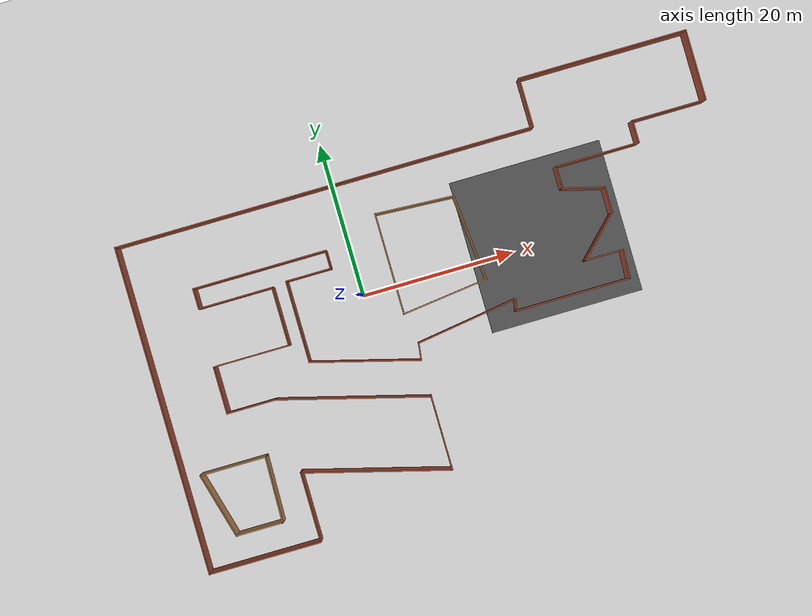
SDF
<sdf version="1.7">
 <world name="default">
  <light name="sun" type="directional">
   <pose>0 0 10 0 -0 0</pose>
   <diffuse>0.8 0.8 0.8 1</diffuse>
   <specular>0.2 0.2 0.2 1</specular>
   <attenuation>
    <range>1000</range>
    <constant>0.9</constant>
    <linear>0.01</linear>
    <quadratic>0.001</quadratic>
   </attenuation>
   <direction>-0.5 0.1 -0.9</direction>
   <spot><inner_angle>0</inner_angle><outer_angle>0</outer_angle><falloff>0</falloff></spot>
  </light>
  <model name="ground_plane">
   <static>1</static>
   <link name="link">
    <collision name="collision">
     <geometry><plane><normal>0 0 1</normal><size>100 100</size></plane></geometry>
     <surface><friction><ode><mu>100</mu><mu2>50</mu2></ode></friction></surface>
    </collision>
    <visual name="visual">
     <cast_shadows>0</cast_shadows>
     <geometry><plane><normal>0 0 1</normal><size>100 100</size></plane></geometry>
     <material>
      <script><uri>file://media/materials/scripts/gazebo.material</uri><name>Gazebo/Grey</name></script>
     </material>
    </visual>
   </link>
  </model>
  <gravity>0 0 -9.8</gravity>
  <magnetic_field>6e-06 2.3e-05 -4.2e-05</magnetic_field>
  <atmosphere type="adiabatic"/>
  <physics type="ode">
   <max_step_size>0.001</max_step_size>
   <real_time_factor>1</real_time_factor>
   <real_time_update_rate>1000</real_time_update_rate>
  </physics>
  <scene><ambient>0.4 0.4 0.4 1</ambient><background>0.7 0.7 0.7 1</background><shadows>1</shadows></scene>
  <spherical_coordinates>
   <surface_model>EARTH_WGS84</surface_model>
   <latitude_deg>0</latitude_deg>
   <longitude_deg>0</longitude_deg>
   <elevation>0</elevation>
   <heading_deg>0</heading_deg>
  </spherical_coordinates>
  <model name="asphalt_plane">
   <static>1</static>
   <link name="link">
    <collision name="collision">
     <geometry><box><size>20 20 0.1</size></box></geometry>
     <surface>
      <friction><ode><mu>0.08</mu><mu2>0.05</mu2><slip1>0.6</slip1><slip2>0.6</slip2></ode></friction>
     </surface>
    </collision>
    <visual name="visual">
     <cast_shadows>0</cast_shadows>
     <geometry><box><size>20 20 0.1</size></box></geometry>
     <material>
      <script>
       <uri>model://asphalt_plane/materials/scripts</uri>
       <uri>model://asphalt_plane/materials/textures</uri>
       <name>vrc/asphalt</name>
      </script>
     </material>
    </visual>
   </link>
   <pose>24.566 0.776198 -0.0495 0 -0 0</pose>
  </model>
  <model name="aLotOfWalls">
   <pose>10.0421 -3.80055 0 0 -0 0</pose>
   <link name="Wall_0">
    <collision name="Wall_0_Collision">
     <geometry><box><size>15 0.15 2.5</size></box></geometry>
     <pose>0 0 1.25 0 -0 0</pose>
    </collision>
    <visual name="Wall_0_Visual">
     <pose>0 0 1.25 0 -0 0</pose>
     <geometry><box><size>15 0.15 2.5</size></box></geometry>
     <material>
      <script><uri>file://media/materials/scripts/gazebo.material</uri><name>Gazebo/Bricks</name></script>
      <ambient>1 1 1 1</ambient>
     </material>
     <meta><layer>0</layer></meta>
    </visual>
    <pose>15.4613 -3.47232 0 0 -0 0</pose>
   </link>
   <link name="Wall_1">
    <collision name="Wall_1_Collision">
     <geometry><box><size>3.84933 0.15 2.5</size></box></geometry>
     <pose>0 0 1.25 0 -0 0</pose>
    </collision>
    <visual name="Wall_1_Visual">
     <pose>0 0 1.25 0 -0 0</pose>
     <geometry><box><size>3.84933 0.15 2.5</size></box></geometry>
     <material>
      <script><uri>file://media/materials/scripts/gazebo.material</uri><name>Gazebo/Bricks</name></script>
      <ambient>1 1 1 1</ambient>
     </material>
     <meta><layer>0</layer></meta>
    </visual>
    <pose>22.9801 -1.62534 0 0 -0 1.52001</pose>
   </link>
   <link name="Wall_10">
    <collision name="Wall_10_Collision">
     <geometry><box><size>9.25 0.15 2.5</size></box></geometry>
     <pose>0 0 1.25 0 -0 0</pose>
    </collision>
    <visual name="Wall_10_Visual">
     <pose>0 0 1.25 0 -0 0</pose>
     <geometry><box><size>9.25 0.15 2.5</size></box></geometry>
     <material>
      <script><uri>file://media/materials/scripts/gazebo.material</uri><name>Gazebo/Bricks</name></script>
      <ambient>1 1 1 1</ambient>
     </material>
     <meta><layer>0</layer></meta>
    </visual>
    <pose>38.35 20.05 0 0 -0 1.5708</pose>
   </link>
   <link name="Wall_11">
    <collision name="Wall_11_Collision">
     <geometry><box><size>22 0.15 2.5</size></box></geometry>
     <pose>0 0 1.25 0 -0 0</pose>
    </collision>
    <visual name="Wall_11_Visual">
     <pose>0 0 1.25 0 -0 0</pose>
     <geometry><box><size>22 0.15 2.5</size></box></geometry>
     <material>
      <script><uri>file://media/materials/scripts/gazebo.material</uri><name>Gazebo/Bricks</name></script>
      <ambient>1 1 1 1</ambient>
     </material>
     <meta><layer>0</layer></meta>
    </visual>
    <pose>27.425 24.6 0 0 -0 3.14159</pose>
   </link>
   <link name="Wall_12">
    <collision name="Wall_12_Collision">
     <geometry><box><size>6.5 0.15 2.5</size></box></geometry>
     <pose>0 0 1.25 0 -0 0</pose>
    </collision>
    <visual name="Wall_12_Visual">
     <pose>0 0 1.25 0 -0 0</pose>
     <geometry><box><size>6.5 0.15 2.5</size></box></geometry>
     <material>
      <script><uri>file://media/materials/scripts/gazebo.material</uri><name>Gazebo/Bricks</name></script>
      <ambient>1 1 1 1</ambient>
     </material>
     <meta><layer>0</layer></meta>
    </visual>
    <pose>16.5 21.425 0 0 -0 -1.5708</pose>
   </link>
   <link name="Wall_13">
    <collision name="Wall_13_Collision">
     <geometry><box><size>55 0.15 2.5</size></box></geometry>
     <pose>0 0 1.25 0 -0 0</pose>
    </collision>
    <visual name="Wall_13_Visual">
     <pose>0 0 1.25 0 -0 0</pose>
     <geometry><box><size>55 0.15 2.5</size></box></geometry>
     <material>
      <script><uri>file://media/materials/scripts/gazebo.material</uri><name>Gazebo/Bricks</name></script>
      <ambient>0.760784 0.662745 0.627451 1</ambient>
     </material>
     <meta><layer>0</layer></meta>
    </visual>
    <pose>-10.925 18.25 0 0 -0 3.14159</pose>
   </link>
   <link name="Wall_14">
    <collision name="Wall_14_Collision">
     <geometry><box><size>43 0.15 2.5</size></box></geometry>
     <pose>0 0 1.25 0 -0 0</pose>
    </collision>
    <visual name="Wall_14_Visual">
     <pose>0 0 1.25 0 -0 0</pose>
     <geometry><box><size>43 0.15 2.5</size></box></geometry>
     <material>
      <script><uri>file://media/materials/scripts/gazebo.material</uri><name>Gazebo/Bricks</name></script>
      <ambient>0.760784 0.662745 0.627451 1</ambient>
     </material>
     <meta><layer>0</layer></meta>
    </visual>
    <pose>-38.35 -3.175 0 0 -0 -1.5708</pose>
   </link>
   <link name="Wall_15">
    <collision name="Wall_15_Collision">
     <geometry><box><size>14.75 0.15 2.5</size></box></geometry>
     <pose>0 0 1.25 0 -0 0</pose>
    </collision>
    <visual name="Wall_15_Visual">
     <pose>0 0 1.25 0 -0 0</pose>
     <geometry><box><size>14.75 0.15 2.5</size></box></geometry>
     <material>
      <script><uri>file://media/materials/scripts/gazebo.material</uri><name>Gazebo/Bricks</name></script>
      <ambient>1 1 1 1</ambient>
     </material>
     <meta><layer>0</layer></meta>
    </visual>
    <pose>-31.05 -24.6 0 0 -0 0</pose>
   </link>
   <link name="Wall_16">
    <collision name="Wall_16_Collision">
     <geometry><box><size>9.25 0.15 2.5</size></box></geometry>
     <pose>0 0 1.25 0 -0 0</pose>
    </collision>
    <visual name="Wall_16_Visual">
     <pose>0 0 1.25 0 -0 0</pose>
     <geometry><box><size>9.25 0.15 2.5</size></box></geometry>
     <material>
      <script><uri>file://media/materials/scripts/gazebo.material</uri><name>Gazebo/Bricks</name></script>
      <ambient>1 1 1 1</ambient>
     </material>
     <meta><layer>0</layer></meta>
    </visual>
    <pose>-23.75 -20.05 0 0 -0 1.5708</pose>
   </link>
   <link name="Wall_17">
    <collision name="Wall_17_Collision">
     <geometry><box><size>19.25 0.15 2.5</size></box></geometry>
     <pose>0 0 1.25 0 -0 0</pose>
    </collision>
    <visual name="Wall_17_Visual">
     <pose>0 0 1.25 0 -0 0</pose>
     <geometry><box><size>19.25 0.15 2.5</size></box></geometry>
     <material>
      <script><uri>file://media/materials/scripts/gazebo.material</uri><name>Gazebo/Bricks</name></script>
      <ambient>1 1 1 1</ambient>
     </material>
     <meta><layer>0</layer></meta>
    </visual>
    <pose>-14.5254 -17.9717 0 0 -0 -0.261799</pose>
   </link>
   <link name="Wall_18">
    <collision name="Wall_18_Collision">
     <geometry><box><size>9.75 0.15 2.5</size></box></geometry>
     <pose>0 0 1.25 0 -0 0</pose>
    </collision>
    <visual name="Wall_18_Visual">
     <pose>0 0 1.25 0 -0 0</pose>
     <geometry><box><size>9.75 0.15 2.5</size></box></geometry>
     <material>
      <script><uri>file://media/materials/scripts/gazebo.material</uri><name>Gazebo/Bricks</name></script>
      <ambient>1 1 1 1</ambient>
     </material>
     <meta><layer>0</layer></meta>
    </visual>
    <pose>-5.30082 -15.6434 0 0 -0 1.5708</pose>
   </link>
   <link name="Wall_19">
    <collision name="Wall_19_Collision">
     <geometry><box><size>19.75 0.15 2.5</size></box></geometry>
     <pose>0 0 1.25 0 -0 0</pose>
    </collision>
    <visual name="Wall_19_Visual">
     <pose>0 0 1.25 0 -0 0</pose>
     <geometry><box><size>19.75 0.15 2.5</size></box></geometry>
     <material>
      <script><uri>file://media/materials/scripts/gazebo.material</uri><name>Gazebo/Bricks</name></script>
      <ambient>1 1 1 1</ambient>
     </material>
     <meta><layer>0</layer></meta>
    </visual>
    <pose>-14.7669 -8.30702 0 0 -0 2.87979</pose>
   </link>
   <link name="Wall_2">
    <collision name="Wall_2_Collision">
     <geometry><box><size>5 0.15 2.5</size></box></geometry>
     <pose>0 0 1.25 0 -0 0</pose>
    </collision>
    <visual name="Wall_2_Visual">
     <pose>0 0 1.25 0 -0 0</pose>
     <geometry><box><size>5 0.15 2.5</size></box></geometry>
     <material>
      <script><uri>file://media/materials/scripts/gazebo.material</uri><name>Gazebo/Bricks</name></script>
      <ambient>1 1 1 1</ambient>
     </material>
     <meta><layer>0</layer></meta>
    </visual>
    <pose>20.649 0.221637 0 0 -0 3.14159</pose>
   </link>
   <link name="Wall_20">
    <collision name="Wall_20_Collision">
     <geometry><box><size>6.5 0.15 2.5</size></box></geometry>
     <pose>0 0 1.25 0 -0 0</pose>
    </collision>
    <visual name="Wall_20_Visual">
     <pose>0 0 1.25 0 -0 0</pose>
     <geometry><box><size>6.5 0.15 2.5</size></box></geometry>
     <material>
      <script><uri>file://media/materials/scripts/gazebo.material</uri><name>Gazebo/Bricks</name></script>
      <ambient>1 1 1 1</ambient>
     </material>
     <meta><layer>0</layer></meta>
    </visual>
    <pose>-27.408 -5.77059 0 0 -0 3.14159</pose>
   </link>
   <link name="Wall_21">
    <collision name="Wall_21_Collision">
     <geometry><box><size>6.25 0.15 2.5</size></box></geometry>
     <pose>0 0 1.25 0 -0 0</pose>
    </collision>
    <visual name="Wall_21_Visual">
     <pose>0 0 1.25 0 -0 0</pose>
     <geometry><box><size>6.25 0.15 2.5</size></box></geometry>
     <material>
      <script><uri>file://media/materials/scripts/gazebo.material</uri><name>Gazebo/Bricks</name></script>
      <ambient>1 1 1 1</ambient>
     </material>
     <meta><layer>0</layer></meta>
    </visual>
    <pose>-30.583 -2.72059 0 0 -0 1.5708</pose>
   </link>
   <link name="Wall_22">
    <collision name="Wall_22_Collision">
     <geometry><box><size>10 0.15 2.5</size></box></geometry>
     <pose>0 0 1.25 0 -0 0</pose>
    </collision>
    <visual name="Wall_22_Visual">
     <pose>0 0 1.25 0 -0 0</pose>
     <geometry><box><size>10 0.15 2.5</size></box></geometry>
     <material>
      <script><uri>file://media/materials/scripts/gazebo.material</uri><name>Gazebo/Bricks</name></script>
      <ambient>1 1 1 1</ambient>
     </material>
     <meta><layer>0</layer></meta>
    </visual>
    <pose>-25.658 0.32941 0 0 -0 0</pose>
   </link>
   <link name="Wall_23">
    <collision name="Wall_23_Collision">
     <geometry><box><size>7.75 0.15 2.5</size></box></geometry>
     <pose>0 0 1.25 0 -0 0</pose>
    </collision>
    <visual name="Wall_23_Visual">
     <pose>0 0 1.25 0 -0 0</pose>
     <geometry><box><size>7.75 0.15 2.5</size></box></geometry>
     <material>
      <script><uri>file://media/materials/scripts/gazebo.material</uri><name>Gazebo/Bricks</name></script>
      <ambient>1 1 1 1</ambient>
     </material>
     <meta><layer>0</layer></meta>
    </visual>
    <pose>-20.733 4.12941 0 0 -0 1.5708</pose>
   </link>
   <link name="Wall_24">
    <collision name="Wall_24_Collision">
     <geometry><box><size>9.75 0.15 2.5</size></box></geometry>
     <pose>0 0 1.25 0 -0 0</pose>
    </collision>
    <visual name="Wall_24_Visual">
     <pose>0 0 1.25 0 -0 0</pose>
     <geometry><box><size>9.75 0.15 2.5</size></box></geometry>
     <material>
      <script><uri>file://media/materials/scripts/gazebo.material</uri><name>Gazebo/Bricks</name></script>
      <ambient>0.760784 0.662745 0.627451 1</ambient>
     </material>
     <meta><layer>0</layer></meta>
    </visual>
    <pose>-25.533 7.92941 0 0 -0 3.14159</pose>
   </link>
   <link name="Wall_25">
    <collision name="Wall_25_Collision">
     <geometry><box><size>2.75 0.15 2.5</size></box></geometry>
     <pose>0 0 1.25 0 -0 0</pose>
    </collision>
    <visual name="Wall_25_Visual">
     <pose>0 0 1.25 0 -0 0</pose>
     <geometry><box><size>2.75 0.15 2.5</size></box></geometry>
     <material>
      <script><uri>file://media/materials/scripts/gazebo.material</uri><name>Gazebo/Bricks</name></script>
      <ambient>1 1 1 1</ambient>
     </material>
     <meta><layer>0</layer></meta>
    </visual>
    <pose>-30.333 9.22941 0 0 -0 1.5708</pose>
   </link>
   <link name="Wall_26">
    <collision name="Wall_26_Collision">
     <geometry><box><size>17.5 0.15 2.5</size></box></geometry>
     <pose>0 0 1.25 0 -0 0</pose>
    </collision>
    <visual name="Wall_26_Visual">
     <pose>0 0 1.25 0 -0 0</pose>
     <geometry><box><size>17.5 0.15 2.5</size></box></geometry>
     <material>
      <script><uri>file://media/materials/scripts/gazebo.material</uri><name>Gazebo/Bricks</name></script>
      <ambient>0.760784 0.662745 0.627451 1</ambient>
     </material>
     <meta><layer>0</layer></meta>
    </visual>
    <pose>-21.658 10.5294 0 0 -0 0</pose>
   </link>
   <link name="Wall_27">
    <collision name="Wall_27_Collision">
     <geometry><box><size>2.5 0.15 2.5</size></box></geometry>
     <pose>0 0 1.25 0 -0 0</pose>
    </collision>
    <visual name="Wall_27_Visual">
     <pose>0 0 1.25 0 -0 0</pose>
     <geometry><box><size>2.5 0.15 2.5</size></box></geometry>
     <material>
      <script><uri>file://media/materials/scripts/gazebo.material</uri><name>Gazebo/Bricks</name></script>
      <ambient>0.760784 0.662745 0.627451 1</ambient>
     </material>
     <meta><layer>0</layer></meta>
    </visual>
    <pose>-12.983 9.35441 0 0 -0 -1.5708</pose>
   </link>
   <link name="Wall_28">
    <collision name="Wall_28_Collision">
     <geometry><box><size>6 0.15 2.5</size></box></geometry>
     <pose>0 0 1.25 0 -0 0</pose>
    </collision>
    <visual name="Wall_28_Visual">
     <pose>0 0 1.25 0 -0 0</pose>
     <geometry><box><size>6 0.15 2.5</size></box></geometry>
     <material>
      <script><uri>file://media/materials/scripts/gazebo.material</uri><name>Gazebo/Bricks</name></script>
      <ambient>0.760784 0.662745 0.627451 1</ambient>
     </material>
     <meta><layer>0</layer></meta>
    </visual>
    <pose>-15.908 8.17941 0 0 -0 3.14159</pose>
   </link>
   <link name="Wall_29">
    <collision name="Wall_29_Collision">
     <geometry><box><size>10.75 0.15 2.5</size></box></geometry>
     <pose>0 0 1.25 0 -0 0</pose>
    </collision>
    <visual name="Wall_29_Visual">
     <pose>0 0 1.25 0 -0 0</pose>
     <geometry><box><size>10.75 0.15 2.5</size></box></geometry>
     <material>
      <script><uri>file://media/materials/scripts/gazebo.material</uri><name>Gazebo/Bricks</name></script>
      <ambient>1 1 1 1</ambient>
     </material>
     <meta><layer>0</layer></meta>
    </visual>
    <pose>-18.833 2.87941 0 0 -0 -1.5708</pose>
   </link>
   <link name="Wall_3">
    <collision name="Wall_3_Collision">
     <geometry><box><size>7 0.15 2.5</size></box></geometry>
     <pose>0 0 1.25 0 -0 0</pose>
    </collision>
    <visual name="Wall_3_Visual">
     <pose>0 0 1.25 0 -0 0</pose>
     <geometry><box><size>7 0.15 2.5</size></box></geometry>
     <material>
      <script><uri>file://media/materials/scripts/gazebo.material</uri><name>Gazebo/Bricks</name></script>
      <ambient>1 1 1 1</ambient>
     </material>
     <meta><layer>0</layer></meta>
    </visual>
    <pose>20.6459 2.64348 0 0 -0 0.785398</pose>
   </link>
   <link name="Wall_30">
    <collision name="Wall_30_Collision">
     <geometry><box><size>14.25 0.15 2.5</size></box></geometry>
     <pose>0 0 1.25 0 -0 0</pose>
    </collision>
    <visual name="Wall_30_Visual">
     <pose>0 0 1.25 0 -0 0</pose>
     <geometry><box><size>14.25 0.15 2.5</size></box></geometry>
     <material>
      <script><uri>file://media/materials/scripts/gazebo.material</uri><name>Gazebo/Bricks</name></script>
      <ambient>1 1 1 1</ambient>
     </material>
     <meta><layer>0</layer></meta>
    </visual>
    <pose>-12.0232 -4.24526 0 0 -0 -0.261799</pose>
   </link>
   <link name="Wall_31">
    <collision name="Wall_31_Collision">
     <geometry><box><size>2.2991 0.15 2.5</size></box></geometry>
     <pose>0 0 1.25 0 -0 0</pose>
    </collision>
    <visual name="Wall_31_Visual">
     <pose>0 0 1.25 0 -0 0</pose>
     <geometry><box><size>2.2991 0.15 2.5</size></box></geometry>
     <material>
      <script><uri>file://media/materials/scripts/gazebo.material</uri><name>Gazebo/Bricks</name></script>
      <ambient>1 1 1 1</ambient>
     </material>
     <meta><layer>0</layer></meta>
    </visual>
    <pose>-5.07425 -5.00444 0 0 -0 1.44093</pose>
   </link>
   <link name="Wall_32">
    <collision name="Wall_32_Collision">
     <geometry><box><size>13.5752 0.15 2.5</size></box></geometry>
     <pose>0 0 1.25 0 -0 0</pose>
    </collision>
    <visual name="Wall_32_Visual">
     <pose>0 0 1.25 0 -0 0</pose>
     <geometry><box><size>13.5752 0.15 2.5</size></box></geometry>
     <material>
      <script><uri>file://media/materials/scripts/gazebo.material</uri><name>Gazebo/Bricks</name></script>
      <ambient>1 1 1 1</ambient>
     </material>
     <meta><layer>0</layer></meta>
    </visual>
    <pose>1.68387 -2.9691 0 0 -0 0.144986</pose>
   </link>
   <link name="Wall_33">
    <collision name="Wall_33_Collision">
     <geometry><box><size>1.55776 0.15 2.5</size></box></geometry>
     <pose>0 0 1.25 0 -0 0</pose>
    </collision>
    <visual name="Wall_33_Visual">
     <pose>0 0 1.25 0 -0 0</pose>
     <geometry><box><size>1.55776 0.15 2.5</size></box></geometry>
     <material>
      <script><uri>file://media/materials/scripts/gazebo.material</uri><name>Gazebo/Bricks</name></script>
      <ambient>1 1 1 1</ambient>
     </material>
     <meta><layer>0</layer></meta>
    </visual>
    <pose>8.21005 -2.68926 0 0 -0 -1.76981</pose>
   </link>
   <link name="Wall_35">
    <collision name="Wall_35_Collision">
     <geometry><box><size>13.25 0.15 2.5</size></box></geometry>
     <pose>0 0 1.25 0 -0 0</pose>
    </collision>
    <visual name="Wall_35_Visual">
     <pose>0 0 1.25 0 -0 0</pose>
     <geometry><box><size>13.25 0.15 2.5</size></box></geometry>
     <material>
      <script><uri>file://media/materials/scripts/gazebo.material</uri><name>Gazebo/Wood</name></script>
      <ambient>0.760784 0.662745 0.627451 1</ambient>
     </material>
     <meta><layer>0</layer></meta>
    </visual>
    <pose>-5.69913 6.672 0 0 -0 -1.5708</pose>
   </link>
   <link name="Wall_36">
    <collision name="Wall_36_Collision">
     <geometry><box><size>11.4227 0.15 2.5</size></box></geometry>
     <pose>0 0 1.25 0 -0 0</pose>
    </collision>
    <visual name="Wall_36_Visual">
     <pose>0 0 1.25 0 -0 0</pose>
     <geometry><box><size>11.4227 0.15 2.5</size></box></geometry>
     <material>
      <script><uri>file://media/materials/scripts/gazebo.material</uri><name>Gazebo/Wood</name></script>
      <ambient>1 1 1 1</ambient>
     </material>
     <meta><layer>0</layer></meta>
    </visual>
    <pose>-0.102965 0.763113 0 0 -0 0.119472</pose>
   </link>
   <link name="Wall_37">
    <collision name="Wall_37_Collision">
     <geometry><box><size>11.456 0.15 2.5</size></box></geometry>
     <pose>0 0 1.25 0 -0 0</pose>
    </collision>
    <visual name="Wall_37_Visual">
     <pose>0 0 1.25 0 -0 0</pose>
     <geometry><box><size>11.456 0.15 2.5</size></box></geometry>
     <material>
      <script><uri>file://media/materials/scripts/gazebo.material</uri><name>Gazebo/Wood</name></script>
      <ambient>1 1 1 1</ambient>
     </material>
     <meta><layer>0</layer></meta>
    </visual>
    <pose>4.98005 7.06326 0 0 -0 1.66417</pose>
   </link>
   <link name="Wall_38">
    <collision name="Wall_38_Collision">
     <geometry><box><size>10.2948 0.15 2.5</size></box></geometry>
     <pose>0 0 1.25 0 -0 0</pose>
    </collision>
    <visual name="Wall_38_Visual">
     <pose>0 0 1.25 0 -0 0</pose>
     <geometry><box><size>10.2948 0.15 2.5</size></box></geometry>
     <material>
      <script><uri>file://media/materials/scripts/gazebo.material</uri><name>Gazebo/Wood</name></script>
      <ambient>1 1 1 1</ambient>
     </material>
     <meta><layer>0</layer></meta>
    </visual>
    <pose>-0.611375 12.9465 0 0 -0 3.08526</pose>
   </link>
   <link name="Wall_4">
    <collision name="Wall_4_Collision">
     <geometry><box><size>3.5 0.15 2.5</size></box></geometry>
     <pose>0 0 1.25 0 -0 0</pose>
    </collision>
    <visual name="Wall_4_Visual">
     <pose>0 0 1.25 0 -0 0</pose>
     <geometry><box><size>3.5 0.15 2.5</size></box></geometry>
     <material>
      <script><uri>file://media/materials/scripts/gazebo.material</uri><name>Gazebo/Bricks</name></script>
      <ambient>1 1 1 1</ambient>
     </material>
     <meta><layer>0</layer></meta>
    </visual>
    <pose>23.0677 6.74032 0 0 -0 1.5708</pose>
   </link>
   <link name="Wall_40">
    <collision name="Wall_40_Collision">
     <geometry><box><size>0.201681 0.15 2.5</size></box></geometry>
     <pose>0 0 1.25 0 -0 0</pose>
    </collision>
    <visual name="Wall_40_Visual">
     <pose>0 0 1.25 0 -0 0</pose>
     <geometry><box><size>0.201681 0.15 2.5</size></box></geometry>
     <material>
      <script><uri>file://media/materials/scripts/gazebo.material</uri><name>Gazebo/Grey</name></script>
      <ambient>1 1 1 1</ambient>
     </material>
     <meta><layer>0</layer></meta>
    </visual>
    <pose>-27.7106 -20.8837 0 0 -0 0</pose>
   </link>
   <link name="Wall_41">
    <collision name="Wall_41_Collision">
     <geometry><box><size>6.20168 0.15 2.5</size></box></geometry>
     <pose>0 0 1.25 0 -0 0</pose>
    </collision>
    <visual name="Wall_41_Visual">
     <pose>0 0 1.25 0 -0 0</pose>
     <geometry><box><size>6.20168 0.15 2.5</size></box></geometry>
     <material>
      <script><uri>file://media/materials/scripts/gazebo.material</uri><name>Gazebo/Wood</name></script>
      <ambient>1 1 1 1</ambient>
     </material>
     <meta><layer>0</layer></meta>
    </visual>
    <pose>-30.7106 -20.8837 0 0 -0 3.14159</pose>
   </link>
   <link name="Wall_42">
    <collision name="Wall_42_Collision">
     <geometry><box><size>9 0.15 2.5</size></box></geometry>
     <pose>0 0 1.25 0 -0 0</pose>
    </collision>
    <visual name="Wall_42_Visual">
     <pose>0 0 1.25 0 -0 0</pose>
     <geometry><box><size>9 0.15 2.5</size></box></geometry>
     <material>
      <script><uri>file://media/materials/scripts/gazebo.material</uri><name>Gazebo/Wood</name></script>
      <ambient>1 1 1 1</ambient>
     </material>
     <meta><layer>0</layer></meta>
    </visual>
    <pose>-34.8817 -16.6095 0 0 -0 1.8326</pose>
   </link>
   <link name="Wall_43">
    <collision name="Wall_43_Collision">
     <geometry><box><size>8.70168 0.15 2.5</size></box></geometry>
     <pose>0 0 1.25 0 -0 0</pose>
    </collision>
    <visual name="Wall_43_Visual">
     <pose>0 0 1.25 0 -0 0</pose>
     <geometry><box><size>8.70168 0.15 2.5</size></box></geometry>
     <material>
      <script><uri>file://media/materials/scripts/gazebo.material</uri><name>Gazebo/Wood</name></script>
      <ambient>1 1 1 1</ambient>
     </material>
     <meta><layer>0</layer></meta>
    </visual>
    <pose>-31.7512 -12.3353 0 0 -0 0</pose>
   </link>
   <link name="Wall_44">
    <collision name="Wall_44_Collision">
     <geometry><box><size>8.70101 0.15 2.5</size></box></geometry>
     <pose>0 0 1.25 0 -0 0</pose>
    </collision>
    <visual name="Wall_44_Visual">
     <pose>0 0 1.25 0 -0 0</pose>
     <geometry><box><size>8.70101 0.15 2.5</size></box></geometry>
     <material>
      <script><uri>file://media/materials/scripts/gazebo.material</uri><name>Gazebo/Wood</name></script>
      <ambient>0.760784 0.662745 0.627451 1</ambient>
     </material>
     <meta><layer>0</layer></meta>
    </visual>
    <pose>-27.5801 -16.6498 0 0 -0 -1.59529</pose>
   </link>
   <link name="Wall_5">
    <collision name="Wall_5_Collision">
     <geometry><box><size>5.5 0.15 2.5</size></box></geometry>
     <pose>0 0 1.25 0 -0 0</pose>
    </collision>
    <visual name="Wall_5_Visual">
     <pose>0 0 1.25 0 -0 0</pose>
     <geometry><box><size>5.5 0.15 2.5</size></box></geometry>
     <material>
      <script><uri>file://media/materials/scripts/gazebo.material</uri><name>Gazebo/Bricks</name></script>
      <ambient>1 1 1 1</ambient>
     </material>
     <meta><layer>0</layer></meta>
    </visual>
    <pose>20.4839 9.10766 0 0 -0 2.87979</pose>
   </link>
   <link name="Wall_6">
    <collision name="Wall_6_Collision">
     <geometry><box><size>3 0.15 2.5</size></box></geometry>
     <pose>0 0 1.25 0 -0 0</pose>
    </collision>
    <visual name="Wall_6_Visual">
     <pose>0 0 1.25 0 -0 0</pose>
     <geometry><box><size>3 0.15 2.5</size></box></geometry>
     <material>
      <script><uri>file://media/materials/scripts/gazebo.material</uri><name>Gazebo/Bricks</name></script>
      <ambient>1 1 1 1</ambient>
     </material>
     <meta><layer>0</layer></meta>
    </visual>
    <pose>17.9 11.225 0 0 -0 1.5708</pose>
   </link>
   <link name="Wall_7">
    <collision name="Wall_7_Collision">
     <geometry><box><size>11 0.15 2.5</size></box></geometry>
     <pose>0 0 1.25 0 -0 0</pose>
    </collision>
    <visual name="Wall_7_Visual">
     <pose>0 0 1.25 0 -0 0</pose>
     <geometry><box><size>11 0.15 2.5</size></box></geometry>
     <material>
      <script><uri>file://media/materials/scripts/gazebo.material</uri><name>Gazebo/Bricks</name></script>
      <ambient>1 1 1 1</ambient>
     </material>
     <meta><layer>0</layer></meta>
    </visual>
    <pose>23.325 12.65 0 0 -0 0</pose>
   </link>
   <link name="Wall_8">
    <collision name="Wall_8_Collision">
     <geometry><box><size>3 0.15 2.5</size></box></geometry>
     <pose>0 0 1.25 0 -0 0</pose>
    </collision>
    <visual name="Wall_8_Visual">
     <pose>0 0 1.25 0 -0 0</pose>
     <geometry><box><size>3 0.15 2.5</size></box></geometry>
     <material>
      <script><uri>file://media/materials/scripts/gazebo.material</uri><name>Gazebo/Bricks</name></script>
      <ambient>1 1 1 1</ambient>
     </material>
     <meta><layer>0</layer></meta>
    </visual>
    <pose>28.75 14.075 0 0 -0 1.5708</pose>
   </link>
   <link name="Wall_9">
    <collision name="Wall_9_Collision">
     <geometry><box><size>9.75 0.15 2.5</size></box></geometry>
     <pose>0 0 1.25 0 -0 0</pose>
    </collision>
    <visual name="Wall_9_Visual">
     <pose>0 0 1.25 0 -0 0</pose>
     <geometry><box><size>9.75 0.15 2.5</size></box></geometry>
     <material>
      <script><uri>file://media/materials/scripts/gazebo.material</uri><name>Gazebo/Bricks</name></script>
      <ambient>1 1 1 1</ambient>
     </material>
     <meta><layer>0</layer></meta>
    </visual>
    <pose>33.55 15.5 0 0 -0 0</pose>
   </link>
   <static>1</static>
  </model>
 </world>
</sdf>
